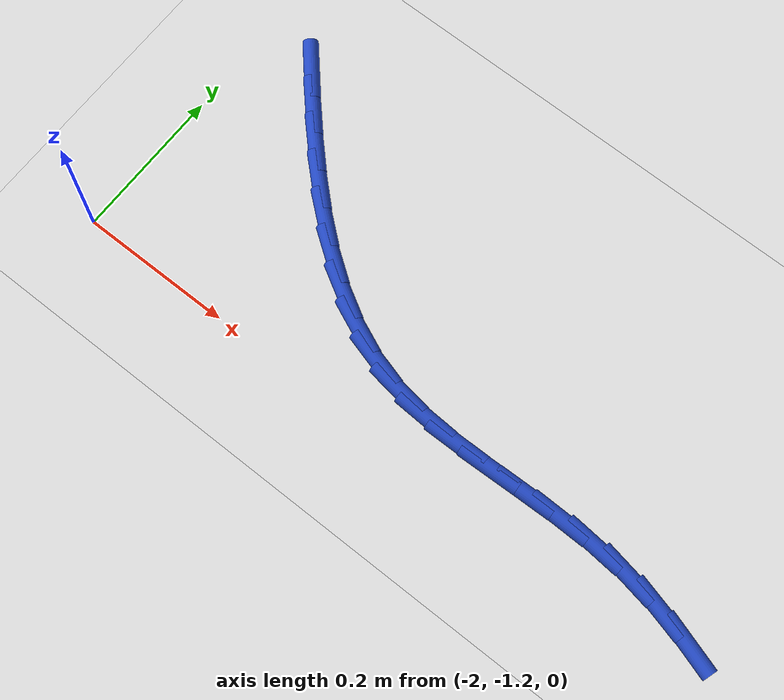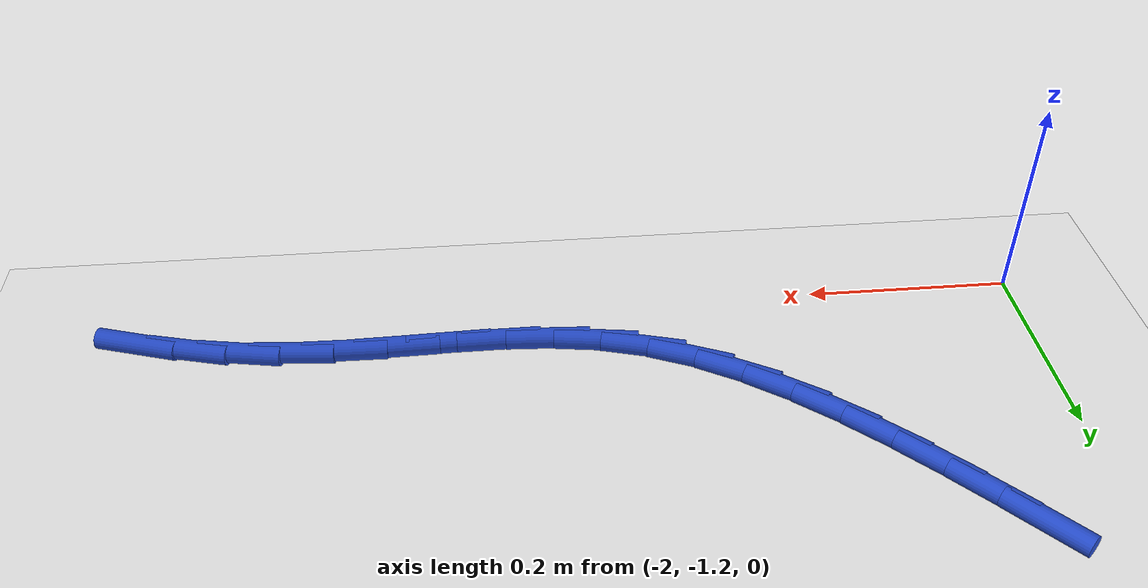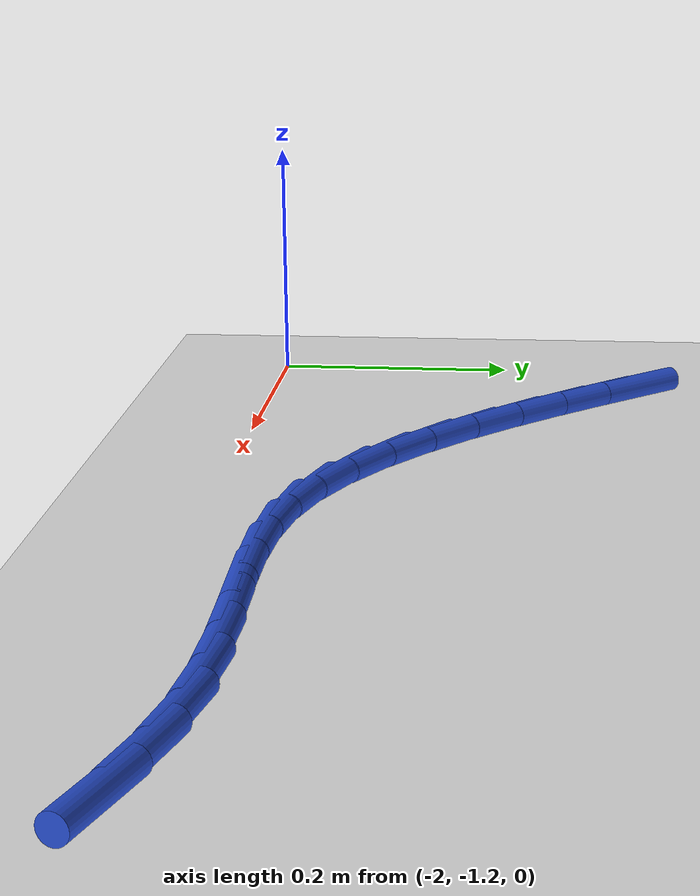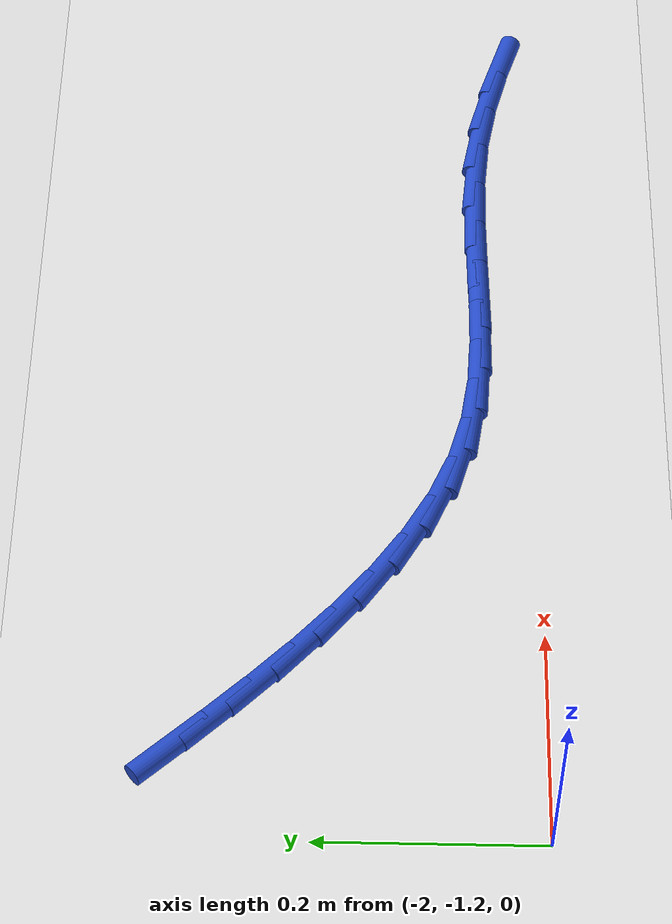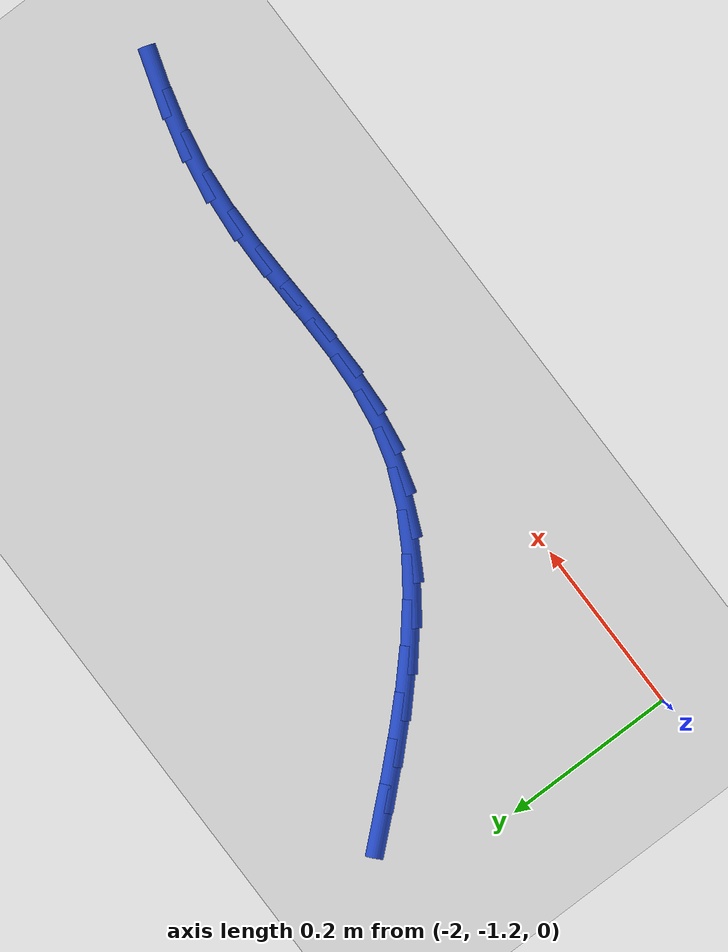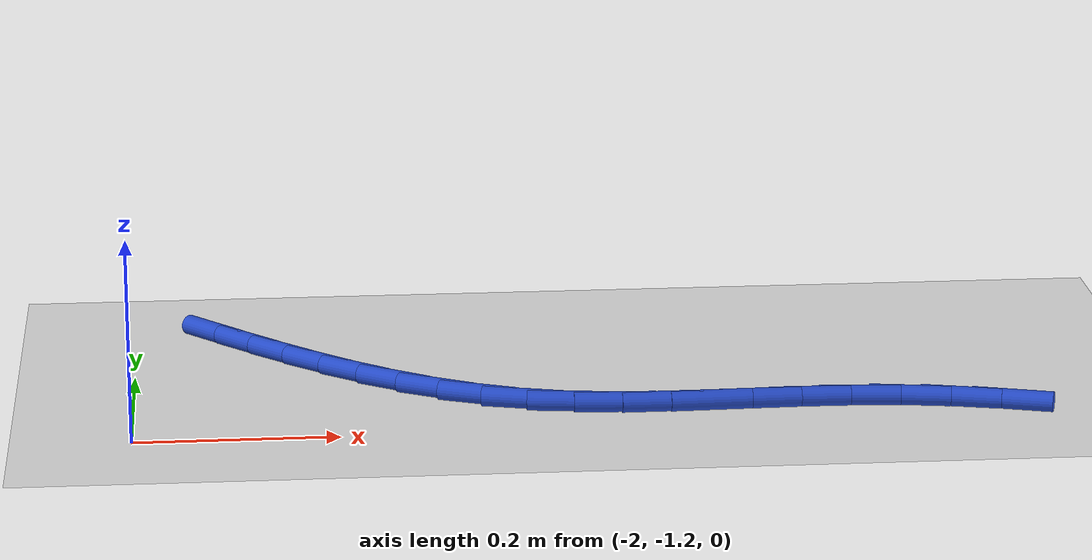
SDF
<sdf version="1.6">
 <world name="default">
  <model name="ground_plane">
   <static>1</static>
   <link name="link">
    <collision name="collision">
     <geometry><plane><normal>0 0 1</normal><size>100 100</size></plane></geometry>
     <surface><friction><ode><mu>100</mu><mu2>50</mu2></ode></friction></surface>
    </collision>
    <visual name="visual">
     <cast_shadows>0</cast_shadows>
     <geometry><plane><normal>0 0 1</normal><size>100 100</size></plane></geometry>
     <material>
      <script><uri>file://media/materials/scripts/gazebo.material</uri><name>Gazebo/WhiteGlow</name></script>
     </material>
    </visual>
   </link>
  </model>
  <model name="line">
   <link name="link_93">
    <pose>-1.919831782458504 -0.8816002920492114 0.01 0 1.57 -0.8454172801910078</pose>
    <collision name="collision">
     <geometry><cylinder><radius>0.01</radius><length>0.08</length></cylinder></geometry>
    </collision>
    <visual name="visual">
     <material>
      <script><name>Gazebo/Blue</name><uri>file://media/materials/scripts/gazebo.material</uri></script>
     </material>
     <geometry><cylinder><radius>0.01</radius><length>0.08</length></cylinder></geometry>
    </visual>
   </link>
   <link name="link_94">
    <pose>-1.8868100008682138 -0.9188444442162355 0.01 0 1.57 -0.8236168186384818</pose>
    <collision name="collision">
     <geometry><cylinder><radius>0.01</radius><length>0.08</length></cylinder></geometry>
    </collision>
    <visual name="visual">
     <material>
      <script><name>Gazebo/Blue</name><uri>file://media/materials/scripts/gazebo.material</uri></script>
     </material>
     <geometry><cylinder><radius>0.01</radius><length>0.08</length></cylinder></geometry>
    </visual>
   </link>
   <link name="link_95">
    <pose>-1.8526653097742622 -0.9557041499098344 0.01 0 1.57 -0.7931818084738356</pose>
    <collision name="collision">
     <geometry><cylinder><radius>0.01</radius><length>0.08</length></cylinder></geometry>
    </collision>
    <visual name="visual">
     <material>
      <script><name>Gazebo/Blue</name><uri>file://media/materials/scripts/gazebo.material</uri></script>
     </material>
     <geometry><cylinder><radius>0.01</radius><length>0.08</length></cylinder></geometry>
    </visual>
   </link>
   <link name="link_96">
    <pose>-1.8173730662089806 -0.9915501192583671 0.01 0 1.57 -0.7497382835807617</pose>
    <collision name="collision">
     <geometry><cylinder><radius>0.01</radius><length>0.08</length></cylinder></geometry>
    </collision>
    <visual name="visual">
     <material>
      <script><name>Gazebo/Blue</name><uri>file://media/materials/scripts/gazebo.material</uri></script>
     </material>
     <geometry><cylinder><radius>0.01</radius><length>0.08</length></cylinder></geometry>
    </visual>
   </link>
   <link name="link_97">
    <pose>-1.7808573643439518 -1.0255501713972945 0.01 0 1.57 -0.6917538439461745</pose>
    <collision name="collision">
     <geometry><cylinder><radius>0.01</radius><length>0.08</length></cylinder></geometry>
    </collision>
    <visual name="visual">
     <material>
      <script><name>Gazebo/Blue</name><uri>file://media/materials/scripts/gazebo.material</uri></script>
     </material>
     <geometry><cylinder><radius>0.01</radius><length>0.08</length></cylinder></geometry>
    </visual>
   </link>
   <link name="link_98">
    <pose>-1.7430422661124725 -1.0568719978675796 0.01 0 1.57 -0.6171697925468734</pose>
    <collision name="collision">
     <geometry><cylinder><radius>0.01</radius><length>0.08</length></cylinder></geometry>
    </collision>
    <visual name="visual">
     <material>
      <script><name>Gazebo/Blue</name><uri>file://media/materials/scripts/gazebo.material</uri></script>
     </material>
     <geometry><cylinder><radius>0.01</radius><length>0.08</length></cylinder></geometry>
    </visual>
   </link>
   <link name="link_99">
    <pose>-1.7038518334478365 -1.084683290210186 0.01 0 1.57 -0.5236716718860327</pose>
    <collision name="collision">
     <geometry><cylinder><radius>0.01</radius><length>0.08</length></cylinder></geometry>
    </collision>
    <visual name="visual">
     <material>
      <script><name>Gazebo/Blue</name><uri>file://media/materials/scripts/gazebo.material</uri></script>
     </material>
     <geometry><cylinder><radius>0.01</radius><length>0.08</length></cylinder></geometry>
    </visual>
   </link>
   <link name="link_100">
    <pose>-1.6632101282833387 -1.108151739966076 0.01 0 1.57 -0.4093090962679287</pose>
    <collision name="collision">
     <geometry><cylinder><radius>0.01</radius><length>0.08</length></cylinder></geometry>
    </collision>
    <visual name="visual">
     <material>
      <script><name>Gazebo/Blue</name><uri>file://media/materials/scripts/gazebo.material</uri></script>
     </material>
     <geometry><cylinder><radius>0.01</radius><length>0.08</length></cylinder></geometry>
    </visual>
   </link>
   <link name="link_101">
    <pose>-1.621041212552274 -1.1264450386762128 0.01 0 1.57 -0.27437590828537956</pose>
    <collision name="collision">
     <geometry><cylinder><radius>0.01</radius><length>0.08</length></cylinder></geometry>
    </collision>
    <visual name="visual">
     <material>
      <script><name>Gazebo/Blue</name><uri>file://media/materials/scripts/gazebo.material</uri></script>
     </material>
     <geometry><cylinder><radius>0.01</radius><length>0.08</length></cylinder></geometry>
    </visual>
   </link>
   <link name="link_102">
    <pose>-1.5772737617688624 -1.138764480119263 0.01 0 1.57 -0.14454596433779343</pose>
    <collision name="collision">
     <geometry><cylinder><radius>0.01</radius><length>0.08</length></cylinder></geometry>
    </collision>
    <visual name="visual">
     <material>
      <script><name>Gazebo/Blue</name><uri>file://media/materials/scripts/gazebo.material</uri></script>
     </material>
     <geometry><cylinder><radius>0.01</radius><length>0.08</length></cylinder></geometry>
    </visual>
   </link>
   <link name="link_103">
    <pose>-1.5319800837361057 -1.1453574795979384 0.01 0 1.57 -0.05017468203903243</pose>
    <collision name="collision">
     <geometry><cylinder><radius>0.01</radius><length>0.08</length></cylinder></geometry>
    </collision>
    <visual name="visual">
     <material>
      <script><name>Gazebo/Blue</name><uri>file://media/materials/scripts/gazebo.material</uri></script>
     </material>
     <geometry><cylinder><radius>0.01</radius><length>0.08</length></cylinder></geometry>
    </visual>
   </link>
   <link name="link_104">
    <pose>-1.485400691784788 -1.1476965489762343 0.01 0 1.57 0.007826602888772311</pose>
    <collision name="collision">
     <geometry><cylinder><radius>0.01</radius><length>0.08</length></cylinder></geometry>
    </collision>
    <visual name="visual">
     <material>
      <script><name>Gazebo/Blue</name><uri>file://media/materials/scripts/gazebo.material</uri></script>
     </material>
     <geometry><cylinder><radius>0.01</radius><length>0.08</length></cylinder></geometry>
    </visual>
   </link>
   <link name="link_105">
    <pose>-1.4377856659327253 -1.1473238774679009 0.01 0 1.57 0.03185295649185691</pose>
    <collision name="collision">
     <geometry><cylinder><radius>0.01</radius><length>0.08</length></cylinder></geometry>
    </collision>
    <visual name="visual">
     <material>
      <script><name>Gazebo/Blue</name><uri>file://media/materials/scripts/gazebo.material</uri></script>
     </material>
     <geometry><cylinder><radius>0.01</radius><length>0.08</length></cylinder></geometry>
    </visual>
   </link>
   <link name="link_106">
    <pose>-1.389385086197737 -1.1457816542866868 0.01 0 1.57 0.023895736012466872</pose>
    <collision name="collision">
     <geometry><cylinder><radius>0.01</radius><length>0.08</length></cylinder></geometry>
    </collision>
    <visual name="visual">
     <material>
      <script><name>Gazebo/Blue</name><uri>file://media/materials/scripts/gazebo.material</uri></script>
     </material>
     <geometry><cylinder><radius>0.01</radius><length>0.08</length></cylinder></geometry>
    </visual>
   </link>
   <link name="link_107">
    <pose>-1.34044903259764 -1.1446120686463417 0.01 0 1.57 -0.015139420214559702</pose>
    <collision name="collision">
     <geometry><cylinder><radius>0.01</radius><length>0.08</length></cylinder></geometry>
    </collision>
    <visual name="visual">
     <material>
      <script><name>Gazebo/Blue</name><uri>file://media/materials/scripts/gazebo.material</uri></script>
     </material>
     <geometry><cylinder><radius>0.01</radius><length>0.08</length></cylinder></geometry>
    </visual>
   </link>
   <link name="link_108">
    <pose>-1.291227585150253 -1.1453573097606156 0.01 0 1.57 -0.08510722358577505</pose>
    <collision name="collision">
     <geometry><cylinder><radius>0.01</radius><length>0.08</length></cylinder></geometry>
    </collision>
    <visual name="visual">
     <material>
      <script><name>Gazebo/Blue</name><uri>file://media/materials/scripts/gazebo.material</uri></script>
     </material>
     <geometry><cylinder><radius>0.01</radius><length>0.08</length></cylinder></geometry>
    </visual>
   </link>
   <link name="link_109">
    <pose>-1.2419708238733949 -1.1495595668432574 0.01 0 1.57 -0.1795682300999628</pose>
    <collision name="collision">
     <geometry><cylinder><radius>0.01</radius><length>0.08</length></cylinder></geometry>
    </collision>
    <visual name="visual">
     <material>
      <script><name>Gazebo/Blue</name><uri>file://media/materials/scripts/gazebo.material</uri></script>
     </material>
     <geometry><cylinder><radius>0.01</radius><length>0.08</length></cylinder></geometry>
    </visual>
   </link>
   <link name="link_110">
    <pose>-1.1929197642903095 -1.15846348671029 0.01 0 1.57 -0.2587951618802181</pose>
    <collision name="collision">
     <geometry><cylinder><radius>0.01</radius><length>0.08</length></cylinder></geometry>
    </collision>
    <visual name="visual">
     <material>
      <script><name>Gazebo/Blue</name><uri>file://media/materials/scripts/gazebo.material</uri></script>
     </material>
     <geometry><cylinder><radius>0.01</radius><length>0.08</length></cylinder></geometry>
    </visual>
   </link>
   <link name="link_111">
    <pose>-1.1442554906605338 -1.1713464700436886 0.01 0 1.57 -0.30861419148422436</pose>
    <collision name="collision">
     <geometry><cylinder><radius>0.01</radius><length>0.08</length></cylinder></geometry>
    </collision>
    <visual name="visual">
     <material>
      <script><name>Gazebo/Blue</name><uri>file://media/materials/scripts/gazebo.material</uri></script>
     </material>
     <geometry><cylinder><radius>0.01</radius><length>0.08</length></cylinder></geometry>
    </visual>
   </link>
  </model>
 </world>
</sdf>
